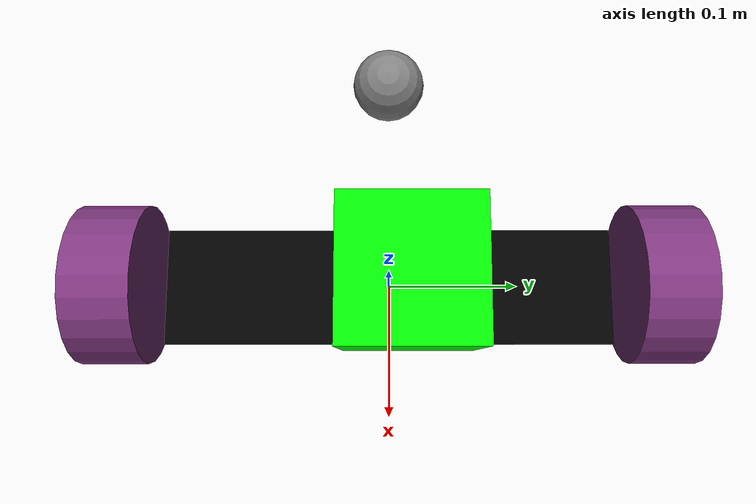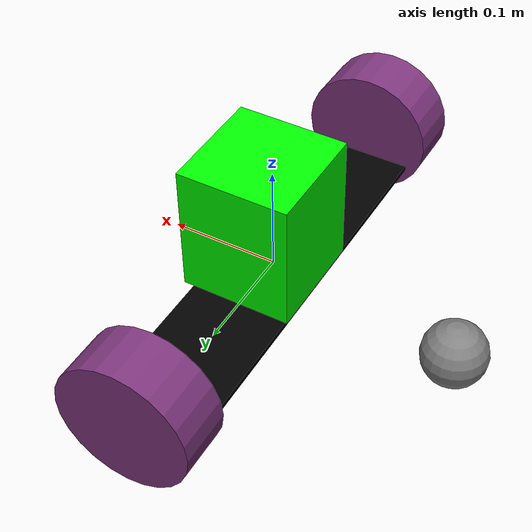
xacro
<?xml version="1.0"?>
<robot xmlns:xacro="http://www.ros.org/wiki/xacro"  >

    <xacro:include filename="inertial_macros.xacro"/>

    <material name="white">
        <color rgba="1 1 1 1"/>
    </material>

    <material name="orange">
        <color rgba="1 0.3 1 1"/>
    </material>

    <material name="grey">
        <color rgba="0.5 0.5 0.5 1"/>
    </material>

    <material name="purple">
        <color rgba="0.49 0.21 0.49 1"/>
    </material>

    <material name="blue">
        <color rgba="0.2 0.2 1 1"/>
    </material>

    <material name="black">
        <color rgba="0 0 0 1"/>
    </material>
    <material name="green">
        <color rgba="0 1 0 1"/>
    </material>

    <!-- BASE -->
    <link name="base_link">
    </link>

     <!-- BASE footprint SLAM -->
    <joint name="base_footprint_joint" type="fixed">
        <parent link="base_link"/>
        <child link="base_footprint"/>
        <origin xyz="0 0 0" rpy="0 0 ${pi/2}"/>
    </joint>

    <link name="base_footprint">
    </link>

    <!-- Chassis related to the Base -->
    <joint name="chassis_joint" type ="fixed">
        <parent link="base_link"/>
        <child link="chassis"/>
        <origin xyz="0.045 0 -0.012"/> <!-- décalage xyz entre le référentiel chassis et le référentiel centre des roues -->
    </joint>
    <!-- Chassis size and shape-->
    <link name="chassis">
        <visual>
            <origin xyz="-0.045 0 0.01" rpy="0 0 0"/> <!-- Translation du chassis pour que les roues soient fixé en dessous -->
            <geometry>
                <box size="0.09 0.35 0.005"/> <!-- taille du chassis-->
            </geometry>
            <material name="black"/> <!-- couleur du chassis-->
        </visual>
        <collision>
            <origin xyz="-0.045 0 0.01" rpy="0 0 0"/> <!-- Translation du chassis pour que les roues soient fixé en dessous -->
            <geometry>
                <box size="0.09 0.35 0.005"/> <!-- taille du chassis-->
            </geometry>
        </collision>
        <xacro:inertial_box mass="0.5" x="0.09" y="0.28" z="0.02">
            <origin xyz="0.045 0 0.01" rpy="0 0 0"/>
        </xacro:inertial_box>

    </link>

    <gazebo reference="chassis">
        <material>Gazebo/Black</material>
    </gazebo>

    <!-- Body -->
    <joint name="body_joint" type="fixed">
        <parent link="base_link"/>
        <child link="body"/>
        <origin xyz="0 0.015 -0.012" rpy="0 0 0"/>
    </joint>

    <link name="body">
        <visual>
            <origin xyz="0 0 0.08" rpy="0 0 0"/>
            <geometry>
                <box size="0.1 0.1 0.12"/> <!-- taille du corp-->
            </geometry>
            <material name="green"/> <!-- couleur du corp-->
        </visual>
        <collision>
            <origin xyz="0 0 -0.08" rpy="0 0 0"/>
            <geometry>
                <box size="0.09 0.1 0.12"/> <!-- taille du corp-->
            </geometry>
        </collision>
        <xacro:inertial_box mass="0.2" x="0.09" y="0.09" z="0.12">
            <origin xyz="0 0 -0.08" rpy="0 0 0"/>
        </xacro:inertial_box>

    </link>

    <gazebo reference="body">
        <material>Gazebo/Green</material>
    </gazebo>

    <!-- LEFT wheels link-->
    <joint name="left_wheel_joint" type="continuous">
        <parent link="base_link"/>
        <child link="left_wheel"/>
        <origin xyz="0 0.205 0.02" rpy="-${pi/2} 0 0"/>
        <axis xyz="0 0 1"/>
    </joint>
    <link name="left_wheel">
        <visual>
            <geometry>
                <cylinder radius="0.06" length="0.05"/>
            </geometry>
            <material name="purple"/>
        </visual>
        <collision>
            <geometry>
                <sphere radius="0.06" />
            </geometry>
        </collision>
        <xacro:inertial_cylinder mass="0.1" length="0.05" radius="0.06">
            <origin xyz="0 0 0" rpy="0 0 0"/>
        </xacro:inertial_cylinder>
    </link>
    <gazebo reference="left_wheel">
        <material>Gazebo/Purple</material>
    </gazebo>

    <!-- right wheels link-->
    <joint name="right_wheel_joint" type="continuous">
        <parent link="base_link"/>
        <child link="right_wheel"/>
        <origin xyz="0 -0.205 0.02" rpy="${pi/2} 0 0"/>
        <axis xyz="0 0 -1"/>
    </joint>
    <link name="right_wheel">
        <visual>
            <geometry>
                <cylinder radius="0.06" length="0.05"/>
            </geometry>
            <material name="purple"/>
        </visual>
        <collision>
            <geometry>
                <sphere radius="0.06" />
            </geometry>
        </collision>
        <xacro:inertial_cylinder mass="0.1" length="0.05" radius="0.06">
            <origin xyz="0 0 0" rpy="0 0 0"/>
        </xacro:inertial_cylinder>
    </link>
    <gazebo reference="right_wheel">
        <material>Gazebo/Purple</material>
    </gazebo>

        <!-- caster wheels link-->
    <joint name="caster_wheel_joint" type="fixed">
        <parent link="chassis"/>
        <child link="caster_wheel"/>
        <origin xyz="-0.22 0 -0.012"/>
    </joint>
    <link name="caster_wheel">
        <visual>
            <geometry>
                <sphere radius="0.03"/>
            </geometry>
            <material name="grey"/>
        </visual>
        <collision>
            <geometry>
                <sphere radius="0.03"/>
            </geometry>
        </collision>
        <xacro:inertial_sphere mass="0.4" radius="0.03">
            <origin xyz="0 0 0" rpy="0 0 0"/>
        </xacro:inertial_sphere>
    </link>
    <gazebo reference="caster_wheel">
        <material>Gazebo/Grey</material>
        <mu1 value="0.001"/>
        <mu2 value="0.001"/>
    </gazebo>

</robot>
